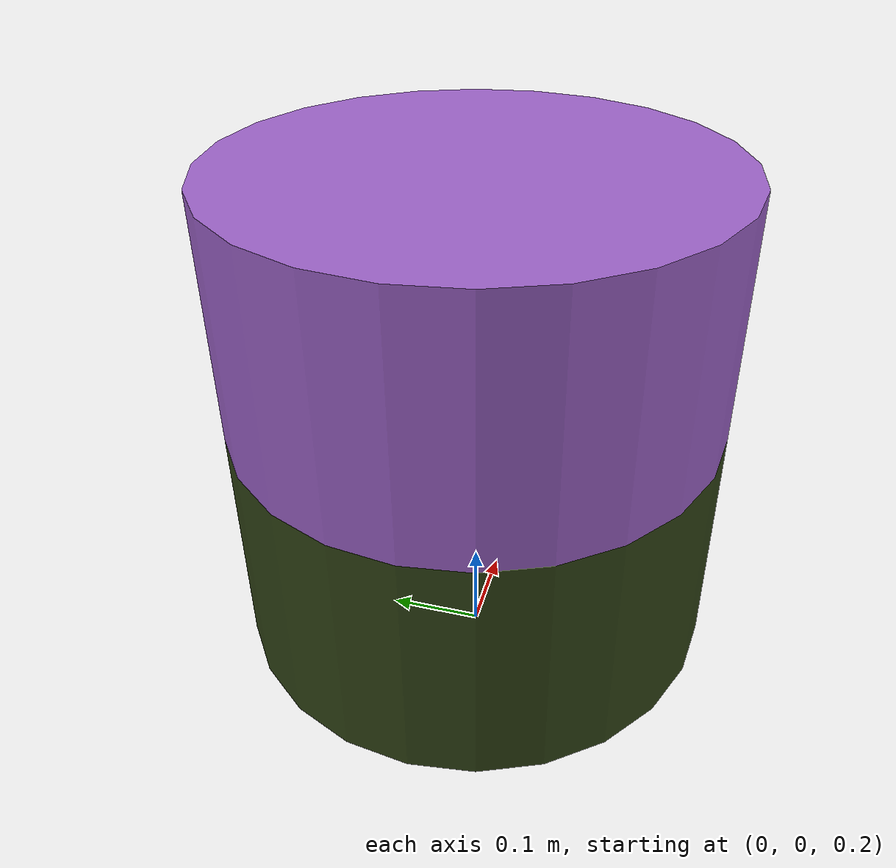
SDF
<?xml version="1.0" ?>
<sdf version="1.6">
    <model name="small_two_tone_cylinder">
        <pose>0 0 0.25 0 0 0</pose>
        <link name="link">
            <!-- Top half of the cylinder -->
            <visual name="visual_top">
                <pose>0 0 0.375 0 0 0</pose>
                <geometry>
                    <cylinder>
                        <radius>0.25</radius>
                        <length>0.25</length>
                    </cylinder>
                </geometry>
                <material>
                    <ambient>0.615686274509804 0.38823529411764707 0.788235294117647 1</ambient>
                    <diffuse>0.615686274509804 0.38823529411764707 0.788235294117647 1</diffuse>
                </material>
            </visual>
            <!-- Bottom half of the cylinder -->
            <visual name="visual_bottom">
                <pose>0 0 0.125 0 0 0</pose>
                <geometry>
                    <cylinder>
                        <radius>0.25</radius>
                        <length>0.25</length>
                    </cylinder>
                </geometry>
                <material>
                    <ambient>0.19215686274509805 0.26666666666666666 0.08627450980392157 1</ambient>
                    <diffuse>0.19215686274509805 0.26666666666666666 0.08627450980392157 1</diffuse>
                </material>
            </visual>
            <!-- Collision for the entire cylinder -->
            <collision name="collision">
                <pose>0 0 0.25 0 0 0</pose>
                <geometry>
                    <cylinder>
                        <radius>0.25</radius>
                        <length>0.5</length>
                    </cylinder>
                </geometry>
            </collision>
        </link>
    </model>
</sdf>
